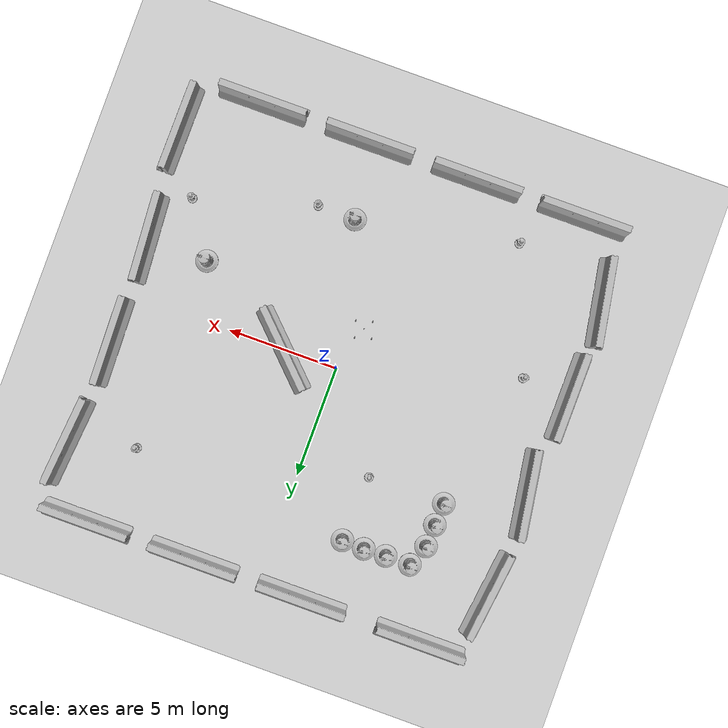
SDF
<sdf version="1.6">
 <world name="default">
  <light name="sun" type="directional">
   <pose>0 0 10 0 -0 0</pose>
   <diffuse>0.8 0.8 0.8 1</diffuse>
   <specular>0.2 0.2 0.2 1</specular>
   <attenuation>
    <range>1000</range>
    <constant>0.9</constant>
    <linear>0.01</linear>
    <quadratic>0.001</quadratic>
   </attenuation>
   <direction>-0.5 0.1 -0.9</direction>
  </light>
  <model name="ground_plane">
   <static>1</static>
   <link name="link">
    <collision name="collision">
     <geometry><plane><normal>0 0 1</normal><size>100 100</size></plane></geometry>
     <surface><friction><ode><mu>100</mu><mu2>50</mu2></ode></friction></surface>
    </collision>
    <visual name="visual">
     <cast_shadows>0</cast_shadows>
     <geometry><plane><normal>0 0 1</normal><size>100 100</size></plane></geometry>
     <material>
      <script><uri>file://media/materials/scripts/gazebo.material</uri><name>Gazebo/Grey</name></script>
     </material>
    </visual>
    <velocity_decay><linear>0</linear><angular>0</angular></velocity_decay>
   </link>
  </model>
  <physics name="default_physics" default="0" type="ode">
   <max_step_size>0.01</max_step_size>
   <real_time_factor>1</real_time_factor>
   <real_time_update_rate>100</real_time_update_rate>
  </physics>
  <scene><ambient>0.4 0.4 0.4 1</ambient><background>0.7 0.7 0.7 1</background><shadows>1</shadows></scene>
  <model name="jersey_barrier">
   <static>1</static>
   <link name="link">
    <visual name="visual">
     <geometry>
      <mesh><uri>model://jersey_barrier/meshes/jersey_barrier.dae</uri><scale>1 1 1</scale></mesh>
     </geometry>
    </visual>
    <collision name="upright">
     <pose>0 0 0.5715 0 -0 0</pose>
     <geometry><box><size>4.06542 0.3063 1.143</size></box></geometry>
    </collision>
    <collision name="base">
     <pose>0 0 0.032258 0 -0 0</pose>
     <geometry><box><size>4.06542 0.8107 0.064516</size></box></geometry>
    </collision>
    <collision name="base2">
     <pose>0 0 0.1 0 -0 0</pose>
     <geometry><box><size>4.06542 0.65 0.1</size></box></geometry>
    </collision>
    <collision name="base3">
     <pose>0 0 0.2 0 -0 0</pose>
     <geometry><box><size>4.06542 0.5 0.1</size></box></geometry>
    </collision>
    <collision name="left-angle">
     <pose>0 -0.224 0.2401 0.9 -0 0</pose>
     <geometry><box><size>4.06542 0.5 0.064516</size></box></geometry>
    </collision>
    <collision name="right-angle">
     <pose>0 0.224 0.2401 -0.9 0 0</pose>
     <geometry><box><size>4.06542 0.5 0.064516</size></box></geometry>
    </collision>
    <velocity_decay><linear>0</linear><angular>0</angular></velocity_decay>
   </link>
   <pose>-8 -10 0 0 -0 0</pose>
  </model>
  <model name="jersey_barrier_0">
   <static>1</static>
   <link name="link">
    <visual name="visual">
     <geometry>
      <mesh><uri>model://jersey_barrier/meshes/jersey_barrier.dae</uri><scale>1 1 1</scale></mesh>
     </geometry>
    </visual>
    <collision name="upright">
     <pose>0 0 0.5715 0 -0 0</pose>
     <geometry><box><size>4.06542 0.3063 1.143</size></box></geometry>
    </collision>
    <collision name="base">
     <pose>0 0 0.032258 0 -0 0</pose>
     <geometry><box><size>4.06542 0.8107 0.064516</size></box></geometry>
    </collision>
    <collision name="base2">
     <pose>0 0 0.1 0 -0 0</pose>
     <geometry><box><size>4.06542 0.65 0.1</size></box></geometry>
    </collision>
    <collision name="base3">
     <pose>0 0 0.2 0 -0 0</pose>
     <geometry><box><size>4.06542 0.5 0.1</size></box></geometry>
    </collision>
    <collision name="left-angle">
     <pose>0 -0.224 0.2401 0.9 -0 0</pose>
     <geometry><box><size>4.06542 0.5 0.064516</size></box></geometry>
    </collision>
    <collision name="right-angle">
     <pose>0 0.224 0.2401 -0.9 0 0</pose>
     <geometry><box><size>4.06542 0.5 0.064516</size></box></geometry>
    </collision>
    <velocity_decay><linear>0</linear><angular>0</angular></velocity_decay>
   </link>
   <pose>-3 -10 0 0 -0 0</pose>
  </model>
  <model name="jersey_barrier_1">
   <static>1</static>
   <link name="link">
    <visual name="visual">
     <geometry>
      <mesh><uri>model://jersey_barrier/meshes/jersey_barrier.dae</uri><scale>1 1 1</scale></mesh>
     </geometry>
    </visual>
    <collision name="upright">
     <pose>0 0 0.5715 0 -0 0</pose>
     <geometry><box><size>4.06542 0.3063 1.143</size></box></geometry>
    </collision>
    <collision name="base">
     <pose>0 0 0.032258 0 -0 0</pose>
     <geometry><box><size>4.06542 0.8107 0.064516</size></box></geometry>
    </collision>
    <collision name="base2">
     <pose>0 0 0.1 0 -0 0</pose>
     <geometry><box><size>4.06542 0.65 0.1</size></box></geometry>
    </collision>
    <collision name="base3">
     <pose>0 0 0.2 0 -0 0</pose>
     <geometry><box><size>4.06542 0.5 0.1</size></box></geometry>
    </collision>
    <collision name="left-angle">
     <pose>0 -0.224 0.2401 0.9 -0 0</pose>
     <geometry><box><size>4.06542 0.5 0.064516</size></box></geometry>
    </collision>
    <collision name="right-angle">
     <pose>0 0.224 0.2401 -0.9 0 0</pose>
     <geometry><box><size>4.06542 0.5 0.064516</size></box></geometry>
    </collision>
    <velocity_decay><linear>0</linear><angular>0</angular></velocity_decay>
   </link>
   <pose>2 -10 0 0 -0 0</pose>
  </model>
  <model name="jersey_barrier_2">
   <static>1</static>
   <link name="link">
    <visual name="visual">
     <geometry>
      <mesh><uri>model://jersey_barrier/meshes/jersey_barrier.dae</uri><scale>1 1 1</scale></mesh>
     </geometry>
    </visual>
    <collision name="upright">
     <pose>0 0 0.5715 0 -0 0</pose>
     <geometry><box><size>4.06542 0.3063 1.143</size></box></geometry>
    </collision>
    <collision name="base">
     <pose>0 0 0.032258 0 -0 0</pose>
     <geometry><box><size>4.06542 0.8107 0.064516</size></box></geometry>
    </collision>
    <collision name="base2">
     <pose>0 0 0.1 0 -0 0</pose>
     <geometry><box><size>4.06542 0.65 0.1</size></box></geometry>
    </collision>
    <collision name="base3">
     <pose>0 0 0.2 0 -0 0</pose>
     <geometry><box><size>4.06542 0.5 0.1</size></box></geometry>
    </collision>
    <collision name="left-angle">
     <pose>0 -0.224 0.2401 0.9 -0 0</pose>
     <geometry><box><size>4.06542 0.5 0.064516</size></box></geometry>
    </collision>
    <collision name="right-angle">
     <pose>0 0.224 0.2401 -0.9 0 0</pose>
     <geometry><box><size>4.06542 0.5 0.064516</size></box></geometry>
    </collision>
    <velocity_decay><linear>0</linear><angular>0</angular></velocity_decay>
   </link>
   <pose>7 -10 0 0 -0 0</pose>
  </model>
  <model name="jersey_barrier_3">
   <static>1</static>
   <link name="link">
    <visual name="visual">
     <geometry>
      <mesh><uri>model://jersey_barrier/meshes/jersey_barrier.dae</uri><scale>1 1 1</scale></mesh>
     </geometry>
    </visual>
    <collision name="upright">
     <pose>0 0 0.5715 0 -0 0</pose>
     <geometry><box><size>4.06542 0.3063 1.143</size></box></geometry>
    </collision>
    <collision name="base">
     <pose>0 0 0.032258 0 -0 0</pose>
     <geometry><box><size>4.06542 0.8107 0.064516</size></box></geometry>
    </collision>
    <collision name="base2">
     <pose>0 0 0.1 0 -0 0</pose>
     <geometry><box><size>4.06542 0.65 0.1</size></box></geometry>
    </collision>
    <collision name="base3">
     <pose>0 0 0.2 0 -0 0</pose>
     <geometry><box><size>4.06542 0.5 0.1</size></box></geometry>
    </collision>
    <collision name="left-angle">
     <pose>0 -0.224 0.2401 0.9 -0 0</pose>
     <geometry><box><size>4.06542 0.5 0.064516</size></box></geometry>
    </collision>
    <collision name="right-angle">
     <pose>0 0.224 0.2401 -0.9 0 0</pose>
     <geometry><box><size>4.06542 0.5 0.064516</size></box></geometry>
    </collision>
    <velocity_decay><linear>0</linear><angular>0</angular></velocity_decay>
   </link>
   <pose>-7.50675 10 0 0 -0 0</pose>
  </model>
  <model name="jersey_barrier_4">
   <static>1</static>
   <link name="link">
    <visual name="visual">
     <geometry>
      <mesh><uri>model://jersey_barrier/meshes/jersey_barrier.dae</uri><scale>1 1 1</scale></mesh>
     </geometry>
    </visual>
    <collision name="upright">
     <pose>0 0 0.5715 0 -0 0</pose>
     <geometry><box><size>4.06542 0.3063 1.143</size></box></geometry>
    </collision>
    <collision name="base">
     <pose>0 0 0.032258 0 -0 0</pose>
     <geometry><box><size>4.06542 0.8107 0.064516</size></box></geometry>
    </collision>
    <collision name="base2">
     <pose>0 0 0.1 0 -0 0</pose>
     <geometry><box><size>4.06542 0.65 0.1</size></box></geometry>
    </collision>
    <collision name="base3">
     <pose>0 0 0.2 0 -0 0</pose>
     <geometry><box><size>4.06542 0.5 0.1</size></box></geometry>
    </collision>
    <collision name="left-angle">
     <pose>0 -0.224 0.2401 0.9 -0 0</pose>
     <geometry><box><size>4.06542 0.5 0.064516</size></box></geometry>
    </collision>
    <collision name="right-angle">
     <pose>0 0.224 0.2401 -0.9 0 0</pose>
     <geometry><box><size>4.06542 0.5 0.064516</size></box></geometry>
    </collision>
    <velocity_decay><linear>0</linear><angular>0</angular></velocity_decay>
   </link>
   <pose>-2 10 0 0 -0 0</pose>
  </model>
  <model name="jersey_barrier_5">
   <static>1</static>
   <link name="link">
    <visual name="visual">
     <geometry>
      <mesh><uri>model://jersey_barrier/meshes/jersey_barrier.dae</uri><scale>1 1 1</scale></mesh>
     </geometry>
    </visual>
    <collision name="upright">
     <pose>0 0 0.5715 0 -0 0</pose>
     <geometry><box><size>4.06542 0.3063 1.143</size></box></geometry>
    </collision>
    <collision name="base">
     <pose>0 0 0.032258 0 -0 0</pose>
     <geometry><box><size>4.06542 0.8107 0.064516</size></box></geometry>
    </collision>
    <collision name="base2">
     <pose>0 0 0.1 0 -0 0</pose>
     <geometry><box><size>4.06542 0.65 0.1</size></box></geometry>
    </collision>
    <collision name="base3">
     <pose>0 0 0.2 0 -0 0</pose>
     <geometry><box><size>4.06542 0.5 0.1</size></box></geometry>
    </collision>
    <collision name="left-angle">
     <pose>0 -0.224 0.2401 0.9 -0 0</pose>
     <geometry><box><size>4.06542 0.5 0.064516</size></box></geometry>
    </collision>
    <collision name="right-angle">
     <pose>0 0.224 0.2401 -0.9 0 0</pose>
     <geometry><box><size>4.06542 0.5 0.064516</size></box></geometry>
    </collision>
    <velocity_decay><linear>0</linear><angular>0</angular></velocity_decay>
   </link>
   <pose>3 10 0 0 -0 0</pose>
  </model>
  <model name="jersey_barrier_6">
   <static>1</static>
   <link name="link">
    <visual name="visual">
     <geometry>
      <mesh><uri>model://jersey_barrier/meshes/jersey_barrier.dae</uri><scale>1 1 1</scale></mesh>
     </geometry>
    </visual>
    <collision name="upright">
     <pose>0 0 0.5715 0 -0 0</pose>
     <geometry><box><size>4.06542 0.3063 1.143</size></box></geometry>
    </collision>
    <collision name="base">
     <pose>0 0 0.032258 0 -0 0</pose>
     <geometry><box><size>4.06542 0.8107 0.064516</size></box></geometry>
    </collision>
    <collision name="base2">
     <pose>0 0 0.1 0 -0 0</pose>
     <geometry><box><size>4.06542 0.65 0.1</size></box></geometry>
    </collision>
    <collision name="base3">
     <pose>0 0 0.2 0 -0 0</pose>
     <geometry><box><size>4.06542 0.5 0.1</size></box></geometry>
    </collision>
    <collision name="left-angle">
     <pose>0 -0.224 0.2401 0.9 -0 0</pose>
     <geometry><box><size>4.06542 0.5 0.064516</size></box></geometry>
    </collision>
    <collision name="right-angle">
     <pose>0 0.224 0.2401 -0.9 0 0</pose>
     <geometry><box><size>4.06542 0.5 0.064516</size></box></geometry>
    </collision>
    <velocity_decay><linear>0</linear><angular>0</angular></velocity_decay>
   </link>
   <pose>8 10 0 0 -0 0</pose>
  </model>
  <model name="jersey_barrier_7">
   <static>1</static>
   <link name="link">
    <visual name="visual">
     <geometry>
      <mesh><uri>model://jersey_barrier/meshes/jersey_barrier.dae</uri><scale>1 1 1</scale></mesh>
     </geometry>
    </visual>
    <collision name="upright">
     <pose>0 0 0.5715 0 -0 0</pose>
     <geometry><box><size>4.06542 0.3063 1.143</size></box></geometry>
    </collision>
    <collision name="base">
     <pose>0 0 0.032258 0 -0 0</pose>
     <geometry><box><size>4.06542 0.8107 0.064516</size></box></geometry>
    </collision>
    <collision name="base2">
     <pose>0 0 0.1 0 -0 0</pose>
     <geometry><box><size>4.06542 0.65 0.1</size></box></geometry>
    </collision>
    <collision name="base3">
     <pose>0 0 0.2 0 -0 0</pose>
     <geometry><box><size>4.06542 0.5 0.1</size></box></geometry>
    </collision>
    <collision name="left-angle">
     <pose>0 -0.224 0.2401 0.9 -0 0</pose>
     <geometry><box><size>4.06542 0.5 0.064516</size></box></geometry>
    </collision>
    <collision name="right-angle">
     <pose>0 0.224 0.2401 -0.9 0 0</pose>
     <geometry><box><size>4.06542 0.5 0.064516</size></box></geometry>
    </collision>
    <velocity_decay><linear>0</linear><angular>0</angular></velocity_decay>
   </link>
   <pose>9.74902 -2.57759 0 0 -0 1.64</pose>
  </model>
  <model name="jersey_barrier_8">
   <static>1</static>
   <link name="link">
    <visual name="visual">
     <geometry>
      <mesh><uri>model://jersey_barrier/meshes/jersey_barrier.dae</uri><scale>1 1 1</scale></mesh>
     </geometry>
    </visual>
    <collision name="upright">
     <pose>0 0 0.5715 0 -0 0</pose>
     <geometry><box><size>4.06542 0.3063 1.143</size></box></geometry>
    </collision>
    <collision name="base">
     <pose>0 0 0.032258 0 -0 0</pose>
     <geometry><box><size>4.06542 0.8107 0.064516</size></box></geometry>
    </collision>
    <collision name="base2">
     <pose>0 0 0.1 0 -0 0</pose>
     <geometry><box><size>4.06542 0.65 0.1</size></box></geometry>
    </collision>
    <collision name="base3">
     <pose>0 0 0.2 0 -0 0</pose>
     <geometry><box><size>4.06542 0.5 0.1</size></box></geometry>
    </collision>
    <collision name="left-angle">
     <pose>0 -0.224 0.2401 0.9 -0 0</pose>
     <geometry><box><size>4.06542 0.5 0.064516</size></box></geometry>
    </collision>
    <collision name="right-angle">
     <pose>0 0.224 0.2401 -0.9 0 0</pose>
     <geometry><box><size>4.06542 0.5 0.064516</size></box></geometry>
    </collision>
    <velocity_decay><linear>0</linear><angular>0</angular></velocity_decay>
   </link>
   <pose>9.70141 2.24369 0 0 -0 1.6</pose>
  </model>
  <model name="jersey_barrier_9">
   <static>1</static>
   <link name="link">
    <visual name="visual">
     <geometry>
      <mesh><uri>model://jersey_barrier/meshes/jersey_barrier.dae</uri><scale>1 1 1</scale></mesh>
     </geometry>
    </visual>
    <collision name="upright">
     <pose>0 0 0.5715 0 -0 0</pose>
     <geometry><box><size>4.06542 0.3063 1.143</size></box></geometry>
    </collision>
    <collision name="base">
     <pose>0 0 0.032258 0 -0 0</pose>
     <geometry><box><size>4.06542 0.8107 0.064516</size></box></geometry>
    </collision>
    <collision name="base2">
     <pose>0 0 0.1 0 -0 0</pose>
     <geometry><box><size>4.06542 0.65 0.1</size></box></geometry>
    </collision>
    <collision name="base3">
     <pose>0 0 0.2 0 -0 0</pose>
     <geometry><box><size>4.06542 0.5 0.1</size></box></geometry>
    </collision>
    <collision name="left-angle">
     <pose>0 -0.224 0.2401 0.9 -0 0</pose>
     <geometry><box><size>4.06542 0.5 0.064516</size></box></geometry>
    </collision>
    <collision name="right-angle">
     <pose>0 0.224 0.2401 -0.9 0 0</pose>
     <geometry><box><size>4.06542 0.5 0.064516</size></box></geometry>
    </collision>
    <velocity_decay><linear>0</linear><angular>0</angular></velocity_decay>
   </link>
   <pose>-10.0607 -6.69856 0 0 0 -1.4</pose>
  </model>
  <model name="jersey_barrier_10">
   <static>1</static>
   <link name="link">
    <visual name="visual">
     <geometry>
      <mesh><uri>model://jersey_barrier/meshes/jersey_barrier.dae</uri><scale>1 1 1</scale></mesh>
     </geometry>
    </visual>
    <collision name="upright">
     <pose>0 0 0.5715 0 -0 0</pose>
     <geometry><box><size>4.06542 0.3063 1.143</size></box></geometry>
    </collision>
    <collision name="base">
     <pose>0 0 0.032258 0 -0 0</pose>
     <geometry><box><size>4.06542 0.8107 0.064516</size></box></geometry>
    </collision>
    <collision name="base2">
     <pose>0 0 0.1 0 -0 0</pose>
     <geometry><box><size>4.06542 0.65 0.1</size></box></geometry>
    </collision>
    <collision name="base3">
     <pose>0 0 0.2 0 -0 0</pose>
     <geometry><box><size>4.06542 0.5 0.1</size></box></geometry>
    </collision>
    <collision name="left-angle">
     <pose>0 -0.224 0.2401 0.9 -0 0</pose>
     <geometry><box><size>4.06542 0.5 0.064516</size></box></geometry>
    </collision>
    <collision name="right-angle">
     <pose>0 0.224 0.2401 -0.9 0 0</pose>
     <geometry><box><size>4.06542 0.5 0.064516</size></box></geometry>
    </collision>
    <velocity_decay><linear>0</linear><angular>0</angular></velocity_decay>
   </link>
   <pose>-10.0774 -2.27159 0 0 -0 1.56</pose>
  </model>
  <model name="jersey_barrier_11">
   <static>1</static>
   <link name="link">
    <visual name="visual">
     <geometry>
      <mesh><uri>model://jersey_barrier/meshes/jersey_barrier.dae</uri><scale>1 1 1</scale></mesh>
     </geometry>
    </visual>
    <collision name="upright">
     <pose>0 0 0.5715 0 -0 0</pose>
     <geometry><box><size>4.06542 0.3063 1.143</size></box></geometry>
    </collision>
    <collision name="base">
     <pose>0 0 0.032258 0 -0 0</pose>
     <geometry><box><size>4.06542 0.8107 0.064516</size></box></geometry>
    </collision>
    <collision name="base2">
     <pose>0 0 0.1 0 -0 0</pose>
     <geometry><box><size>4.06542 0.65 0.1</size></box></geometry>
    </collision>
    <collision name="base3">
     <pose>0 0 0.2 0 -0 0</pose>
     <geometry><box><size>4.06542 0.5 0.1</size></box></geometry>
    </collision>
    <collision name="left-angle">
     <pose>0 -0.224 0.2401 0.9 -0 0</pose>
     <geometry><box><size>4.06542 0.5 0.064516</size></box></geometry>
    </collision>
    <collision name="right-angle">
     <pose>0 0.224 0.2401 -0.9 0 0</pose>
     <geometry><box><size>4.06542 0.5 0.064516</size></box></geometry>
    </collision>
    <velocity_decay><linear>0</linear><angular>0</angular></velocity_decay>
   </link>
   <pose>-9.77013 2.34791 0 0 -0 1.72</pose>
  </model>
  <model name="jersey_barrier_12">
   <static>1</static>
   <link name="link">
    <visual name="visual">
     <geometry>
      <mesh><uri>model://jersey_barrier/meshes/jersey_barrier.dae</uri><scale>1 1 1</scale></mesh>
     </geometry>
    </visual>
    <collision name="upright">
     <pose>0 0 0.5715 0 -0 0</pose>
     <geometry><box><size>4.06542 0.3063 1.143</size></box></geometry>
    </collision>
    <collision name="base">
     <pose>0 0 0.032258 0 -0 0</pose>
     <geometry><box><size>4.06542 0.8107 0.064516</size></box></geometry>
    </collision>
    <collision name="base2">
     <pose>0 0 0.1 0 -0 0</pose>
     <geometry><box><size>4.06542 0.65 0.1</size></box></geometry>
    </collision>
    <collision name="base3">
     <pose>0 0 0.2 0 -0 0</pose>
     <geometry><box><size>4.06542 0.5 0.1</size></box></geometry>
    </collision>
    <collision name="left-angle">
     <pose>0 -0.224 0.2401 0.9 -0 0</pose>
     <geometry><box><size>4.06542 0.5 0.064516</size></box></geometry>
    </collision>
    <collision name="right-angle">
     <pose>0 0.224 0.2401 -0.9 0 0</pose>
     <geometry><box><size>4.06542 0.5 0.064516</size></box></geometry>
    </collision>
    <velocity_decay><linear>0</linear><angular>0</angular></velocity_decay>
   </link>
   <pose>10.0879 -7.62159 0 0 -0 1.56</pose>
  </model>
  <model name="jersey_barrier_13">
   <static>1</static>
   <link name="link">
    <visual name="visual">
     <geometry>
      <mesh><uri>model://jersey_barrier/meshes/jersey_barrier.dae</uri><scale>1 1 1</scale></mesh>
     </geometry>
    </visual>
    <collision name="upright">
     <pose>0 0 0.5715 0 -0 0</pose>
     <geometry><box><size>4.06542 0.3063 1.143</size></box></geometry>
    </collision>
    <collision name="base">
     <pose>0 0 0.032258 0 -0 0</pose>
     <geometry><box><size>4.06542 0.8107 0.064516</size></box></geometry>
    </collision>
    <collision name="base2">
     <pose>0 0 0.1 0 -0 0</pose>
     <geometry><box><size>4.06542 0.65 0.1</size></box></geometry>
    </collision>
    <collision name="base3">
     <pose>0 0 0.2 0 -0 0</pose>
     <geometry><box><size>4.06542 0.5 0.1</size></box></geometry>
    </collision>
    <collision name="left-angle">
     <pose>0 -0.224 0.2401 0.9 -0 0</pose>
     <geometry><box><size>4.06542 0.5 0.064516</size></box></geometry>
    </collision>
    <collision name="right-angle">
     <pose>0 0.224 0.2401 -0.9 0 0</pose>
     <geometry><box><size>4.06542 0.5 0.064516</size></box></geometry>
    </collision>
    <velocity_decay><linear>0</linear><angular>0</angular></velocity_decay>
   </link>
   <pose>10 7 0 0 -0 1.48</pose>
  </model>
  <model name="jersey_barrier_14">
   <static>1</static>
   <link name="link">
    <visual name="visual">
     <geometry>
      <mesh><uri>model://jersey_barrier/meshes/jersey_barrier.dae</uri><scale>1 1 1</scale></mesh>
     </geometry>
    </visual>
    <collision name="upright">
     <pose>0 0 0.5715 0 -0 0</pose>
     <geometry><box><size>4.06542 0.3063 1.143</size></box></geometry>
    </collision>
    <collision name="base">
     <pose>0 0 0.032258 0 -0 0</pose>
     <geometry><box><size>4.06542 0.8107 0.064516</size></box></geometry>
    </collision>
    <collision name="base2">
     <pose>0 0 0.1 0 -0 0</pose>
     <geometry><box><size>4.06542 0.65 0.1</size></box></geometry>
    </collision>
    <collision name="base3">
     <pose>0 0 0.2 0 -0 0</pose>
     <geometry><box><size>4.06542 0.5 0.1</size></box></geometry>
    </collision>
    <collision name="left-angle">
     <pose>0 -0.224 0.2401 0.9 -0 0</pose>
     <geometry><box><size>4.06542 0.5 0.064516</size></box></geometry>
    </collision>
    <collision name="right-angle">
     <pose>0 0.224 0.2401 -0.9 0 0</pose>
     <geometry><box><size>4.06542 0.5 0.064516</size></box></geometry>
    </collision>
    <velocity_decay><linear>0</linear><angular>0</angular></velocity_decay>
   </link>
   <pose>-9.64482 7.05946 0 0 -0 1.44</pose>
  </model>
  <model name="fire_hydrant">
   <static>1</static>
   <link name="link">
    <collision name="collision">
     <geometry><mesh><uri>model://fire_hydrant/meshes/fire_hydrant.dae</uri><scale>1 1 1</scale></mesh></geometry>
    </collision>
    <visual name="visual">
     <geometry><mesh><uri>model://fire_hydrant/meshes/fire_hydrant.dae</uri><scale>1 1 1</scale></mesh></geometry>
    </visual>
    <velocity_decay><linear>0</linear><angular>0</angular></velocity_decay>
   </link>
   <pose>3.18024 -6.51118 0 0 -0 0</pose>
  </model>
  <model name="fire_hydrant_0">
   <static>1</static>
   <link name="link">
    <collision name="collision">
     <geometry><mesh><uri>model://fire_hydrant/meshes/fire_hydrant.dae</uri><scale>1 1 1</scale></mesh></geometry>
    </collision>
    <visual name="visual">
     <geometry><mesh><uri>model://fire_hydrant/meshes/fire_hydrant.dae</uri><scale>1 1 1</scale></mesh></geometry>
    </visual>
    <velocity_decay><linear>0</linear><angular>0</angular></velocity_decay>
   </link>
   <pose>-3 4 0 0 -0 0</pose>
  </model>
  <model name="fire_hydrant_1">
   <static>1</static>
   <link name="link">
    <collision name="collision">
     <geometry><mesh><uri>model://fire_hydrant/meshes/fire_hydrant.dae</uri><scale>1 1 1</scale></mesh></geometry>
    </collision>
    <visual name="visual">
     <geometry><mesh><uri>model://fire_hydrant/meshes/fire_hydrant.dae</uri><scale>1 1 1</scale></mesh></geometry>
    </visual>
    <velocity_decay><linear>0</linear><angular>0</angular></velocity_decay>
   </link>
   <pose>-7.90686 -2.41363 0 0 -0 0</pose>
  </model>
  <model name="jersey_barrier_15">
   <static>1</static>
   <link name="link">
    <visual name="visual">
     <geometry>
      <mesh><uri>model://jersey_barrier/meshes/jersey_barrier.dae</uri><scale>1 1 1</scale></mesh>
     </geometry>
    </visual>
    <collision name="upright">
     <pose>0 0 0.5715 0 -0 0</pose>
     <geometry><box><size>4.06542 0.3063 1.143</size></box></geometry>
    </collision>
    <collision name="base">
     <pose>0 0 0.032258 0 -0 0</pose>
     <geometry><box><size>4.06542 0.8107 0.064516</size></box></geometry>
    </collision>
    <collision name="base2">
     <pose>0 0 0.1 0 -0 0</pose>
     <geometry><box><size>4.06542 0.65 0.1</size></box></geometry>
    </collision>
    <collision name="base3">
     <pose>0 0 0.2 0 -0 0</pose>
     <geometry><box><size>4.06542 0.5 0.1</size></box></geometry>
    </collision>
    <collision name="left-angle">
     <pose>0 -0.224 0.2401 0.9 -0 0</pose>
     <geometry><box><size>4.06542 0.5 0.064516</size></box></geometry>
    </collision>
    <collision name="right-angle">
     <pose>0 0.224 0.2401 -0.9 0 0</pose>
     <geometry><box><size>4.06542 0.5 0.064516</size></box></geometry>
    </collision>
    <velocity_decay><linear>0</linear><angular>0</angular></velocity_decay>
   </link>
   <pose>2.45495 0 0 0 -0 2.36</pose>
  </model>
  <model name="Construction Barrel">
   <link name="link">
    <inertial>
     <pose>0 0 0.4 0 -0 0</pose>
     <mass>500</mass>
     <inertia><ixx>51.2096</ixx><iyy>51.2096</iyy><izz>25</izz><ixy>0</ixy><ixz>0</ixz><iyz>0</iyz></inertia>
    </inertial>
    <collision name="collision">
     <geometry>
      <mesh><uri>model://construction_barrel/meshes/construction_barrel.dae</uri><scale>1 1 1</scale></mesh>
     </geometry>
    </collision>
    <visual name="visual">
     <geometry>
      <mesh><uri>model://construction_barrel/meshes/construction_barrel.dae</uri><scale>1 1 1</scale></mesh>
     </geometry>
    </visual>
    <velocity_decay><linear>0</linear><angular>0</angular></velocity_decay>
   </link>
   <pose>7.00025 -2.54673 -9e-05 0.000308 -0.000178 -0.000871</pose>
   <static>0</static>
  </model>
  <model name="Construction Barrel_0">
   <link name="link">
    <inertial>
     <pose>0 0 0.4 0 -0 0</pose>
     <mass>500</mass>
     <inertia><ixx>51.2096</ixx><iyy>51.2096</iyy><izz>25</izz><ixy>0</ixy><ixz>0</ixz><iyz>0</iyz></inertia>
    </inertial>
    <collision name="collision">
     <geometry>
      <mesh><uri>model://construction_barrel/meshes/construction_barrel.dae</uri><scale>1 1 1</scale></mesh>
     </geometry>
    </collision>
    <visual name="visual">
     <geometry>
      <mesh><uri>model://construction_barrel/meshes/construction_barrel.dae</uri><scale>1 1 1</scale></mesh>
     </geometry>
    </visual>
    <velocity_decay><linear>0</linear><angular>0</angular></velocity_decay>
   </link>
   <pose>1.45164 -6.51153 -9e-05 0.000308 -0.000178 -0.000656</pose>
   <static>0</static>
  </model>
  <model name="Construction Barrel_1">
   <link name="link">
    <inertial>
     <pose>0 0 0.4 0 -0 0</pose>
     <mass>500</mass>
     <inertia><ixx>51.2096</ixx><iyy>51.2096</iyy><izz>25</izz><ixy>0</ixy><ixz>0</ixz><iyz>0</iyz></inertia>
    </inertial>
    <collision name="collision">
     <geometry>
      <mesh><uri>model://construction_barrel/meshes/construction_barrel.dae</uri><scale>1 1 1</scale></mesh>
     </geometry>
    </collision>
    <visual name="visual">
     <geometry>
      <mesh><uri>model://construction_barrel/meshes/construction_barrel.dae</uri><scale>1 1 1</scale></mesh>
     </geometry>
    </visual>
    <velocity_decay><linear>0</linear><angular>0</angular></velocity_decay>
   </link>
   <pose>-6.50481 3.98225 -9.1e-05 0.000308 -0.000178 -0.010674</pose>
   <static>0</static>
  </model>
  <model name="Construction Barrel_2">
   <link name="link">
    <inertial>
     <pose>0 0 0.4 0 -0 0</pose>
     <mass>500</mass>
     <inertia><ixx>51.2096</ixx><iyy>51.2096</iyy><izz>25</izz><ixy>0</ixy><ixz>0</ixz><iyz>0</iyz></inertia>
    </inertial>
    <collision name="collision">
     <geometry>
      <mesh><uri>model://construction_barrel/meshes/construction_barrel.dae</uri><scale>1 1 1</scale></mesh>
     </geometry>
    </collision>
    <visual name="visual">
     <geometry>
      <mesh><uri>model://construction_barrel/meshes/construction_barrel.dae</uri><scale>1 1 1</scale></mesh>
     </geometry>
    </visual>
    <velocity_decay><linear>0</linear><angular>0</angular></velocity_decay>
   </link>
   <pose>-6.45076 4.99629 -9e-05 0.000306 -0.000177 0.064584</pose>
   <static>0</static>
  </model>
  <model name="Construction Barrel_3">
   <link name="link">
    <inertial>
     <pose>0 0 0.4 0 -0 0</pose>
     <mass>500</mass>
     <inertia><ixx>51.2096</ixx><iyy>51.2096</iyy><izz>25</izz><ixy>0</ixy><ixz>0</ixz><iyz>0</iyz></inertia>
    </inertial>
    <collision name="collision">
     <geometry>
      <mesh><uri>model://construction_barrel/meshes/construction_barrel.dae</uri><scale>1 1 1</scale></mesh>
     </geometry>
    </collision>
    <visual name="visual">
     <geometry>
      <mesh><uri>model://construction_barrel/meshes/construction_barrel.dae</uri><scale>1 1 1</scale></mesh>
     </geometry>
    </visual>
    <velocity_decay><linear>0</linear><angular>0</angular></velocity_decay>
   </link>
   <pose>-6.40198 6.01049 -9.1e-05 0.00031 -0.000179 -0.12202</pose>
   <static>0</static>
  </model>
  <model name="Construction Barrel_4">
   <link name="link">
    <inertial>
     <pose>0 0 0.4 0 -0 0</pose>
     <mass>500</mass>
     <inertia><ixx>51.2096</ixx><iyy>51.2096</iyy><izz>25</izz><ixy>0</ixy><ixz>0</ixz><iyz>0</iyz></inertia>
    </inertial>
    <collision name="collision">
     <geometry>
      <mesh><uri>model://construction_barrel/meshes/construction_barrel.dae</uri><scale>1 1 1</scale></mesh>
     </geometry>
    </collision>
    <visual name="visual">
     <geometry>
      <mesh><uri>model://construction_barrel/meshes/construction_barrel.dae</uri><scale>1 1 1</scale></mesh>
     </geometry>
    </visual>
    <velocity_decay><linear>0</linear><angular>0</angular></velocity_decay>
   </link>
   <pose>-6.0065 7.00848 -1.6e-05 2.5e-05 -2.9e-05 -0.050371</pose>
   <static>0</static>
  </model>
  <model name="Construction Barrel_5">
   <link name="link">
    <inertial>
     <pose>0 0 0.4 0 -0 0</pose>
     <mass>500</mass>
     <inertia><ixx>51.2096</ixx><iyy>51.2096</iyy><izz>25</izz><ixy>0</ixy><ixz>0</ixz><iyz>0</iyz></inertia>
    </inertial>
    <collision name="collision">
     <geometry>
      <mesh><uri>model://construction_barrel/meshes/construction_barrel.dae</uri><scale>1 1 1</scale></mesh>
     </geometry>
    </collision>
    <visual name="visual">
     <geometry>
      <mesh><uri>model://construction_barrel/meshes/construction_barrel.dae</uri><scale>1 1 1</scale></mesh>
     </geometry>
    </visual>
    <velocity_decay><linear>0</linear><angular>0</angular></velocity_decay>
   </link>
   <pose>-4.8759 7.00816 -9e-05 0.000304 -0.000176 0.145987</pose>
   <static>0</static>
  </model>
  <model name="Construction Barrel_6">
   <link name="link">
    <inertial>
     <pose>0 0 0.4 0 -0 0</pose>
     <mass>500</mass>
     <inertia><ixx>51.2096</ixx><iyy>51.2096</iyy><izz>25</izz><ixy>0</ixy><ixz>0</ixz><iyz>0</iyz></inertia>
    </inertial>
    <collision name="collision">
     <geometry>
      <mesh><uri>model://construction_barrel/meshes/construction_barrel.dae</uri><scale>1 1 1</scale></mesh>
     </geometry>
    </collision>
    <visual name="visual">
     <geometry>
      <mesh><uri>model://construction_barrel/meshes/construction_barrel.dae</uri><scale>1 1 1</scale></mesh>
     </geometry>
    </visual>
    <velocity_decay><linear>0</linear><angular>0</angular></velocity_decay>
   </link>
   <pose>-3.86149 7.04547 -9e-05 0.000306 -0.000177 0.066184</pose>
   <static>0</static>
  </model>
  <model name="Construction Barrel_7">
   <link name="link">
    <inertial>
     <pose>0 0 0.4 0 -0 0</pose>
     <mass>500</mass>
     <inertia><ixx>51.2096</ixx><iyy>51.2096</iyy><izz>25</izz><ixy>0</ixy><ixz>0</ixz><iyz>0</iyz></inertia>
    </inertial>
    <collision name="collision">
     <geometry>
      <mesh><uri>model://construction_barrel/meshes/construction_barrel.dae</uri><scale>1 1 1</scale></mesh>
     </geometry>
    </collision>
    <visual name="visual">
     <geometry>
      <mesh><uri>model://construction_barrel/meshes/construction_barrel.dae</uri><scale>1 1 1</scale></mesh>
     </geometry>
    </visual>
    <velocity_decay><linear>0</linear><angular>0</angular></velocity_decay>
   </link>
   <pose>-2.84586 7.01438 -9.1e-05 0.000309 -0.000178 -0.04222</pose>
   <static>0</static>
  </model>
  <gravity>0 0 -9.8</gravity>
  <magnetic_field>6e-06 2.3e-05 -4.2e-05</magnetic_field>
  <atmosphere type="adiabatic"/>
  <spherical_coordinates>
   <surface_model>EARTH_WGS84</surface_model>
   <latitude_deg>0</latitude_deg>
   <longitude_deg>0</longitude_deg>
   <elevation>0</elevation>
   <heading_deg>0</heading_deg>
  </spherical_coordinates>
  <model name="fire_hydrant_1_clone">
   <static>1</static>
   <link name="link">
    <collision name="collision">
     <geometry><mesh><uri>model://fire_hydrant/meshes/fire_hydrant.dae</uri><scale>1 1 1</scale></mesh></geometry>
    </collision>
    <visual name="visual">
     <geometry><mesh><uri>model://fire_hydrant/meshes/fire_hydrant.dae</uri><scale>1 1 1</scale></mesh></geometry>
    </visual>
    <velocity_decay><linear>0</linear><angular>0</angular></velocity_decay>
   </link>
   <pose>-5.74674 -7.95866 0 0 -0 0</pose>
  </model>
  <model name="fire_hydrant_clone">
   <static>1</static>
   <link name="link">
    <collision name="collision">
     <geometry><mesh><uri>model://fire_hydrant/meshes/fire_hydrant.dae</uri><scale>1 1 1</scale></mesh></geometry>
    </collision>
    <visual name="visual">
     <geometry><mesh><uri>model://fire_hydrant/meshes/fire_hydrant.dae</uri><scale>1 1 1</scale></mesh></geometry>
    </visual>
    <velocity_decay><linear>0</linear><angular>0</angular></velocity_decay>
   </link>
   <pose>8.52647 -4.92439 0 0 -0 0</pose>
  </model>
  <model name="fire_hydrant_clone_clone">
   <static>1</static>
   <link name="link">
    <collision name="collision">
     <geometry><mesh><uri>model://fire_hydrant/meshes/fire_hydrant.dae</uri><scale>1 1 1</scale></mesh></geometry>
    </collision>
    <visual name="visual">
     <geometry><mesh><uri>model://fire_hydrant/meshes/fire_hydrant.dae</uri><scale>1 1 1</scale></mesh></geometry>
    </visual>
    <velocity_decay><linear>0</linear><angular>0</angular></velocity_decay>
   </link>
   <pose>7.03867 6.26427 0 0 -0 0</pose>
  </model>
  <model name="Untitled">
   <link name="link_2">
    <pose>-0.3775 -0.38 -0.019 0 -0 0</pose>
    <inertial>
     <mass>1</mass>
     <inertia>
      <ixx>0.166667</ixx>
      <ixy>0</ixy>
      <ixz>0</ixz>
      <iyy>0.166667</iyy>
      <iyz>0</iyz>
      <izz>0.166667</izz>
     </inertia>
    </inertial>
    <visual name="visual">
     <geometry><box><size>0.03 0.06 0.57</size></box></geometry>
     <material>
      <lighting>1</lighting>
      <script><uri>file://media/materials/scripts/gazebo.material</uri><name>Gazebo/Grey</name></script>
      <ambient>0.3 0.3 0.3 1</ambient>
      <diffuse>0.7 0.7 0.7 1</diffuse>
      <specular>0.01 0.01 0.01 1</specular>
      <emissive>0 0 0 1</emissive>
      <shader type="vertex"><normal_map>__default__</normal_map></shader>
     </material>
    </visual>
    <collision name="collision">
     <geometry><box><size>0.03 0.06 0.57</size></box></geometry>
     <surface>
      <friction>
       <ode><mu>1</mu><mu2>1</mu2><fdir1>0 0 0</fdir1><slip1>0</slip1><slip2>0</slip2></ode>
       <torsional>
        <coefficient>1</coefficient>
        <patch_radius>0</patch_radius>
        <surface_radius>0</surface_radius>
        <use_patch_radius>1</use_patch_radius>
        <ode><slip>0</slip></ode>
       </torsional>
      </friction>
      <bounce><restitution_coefficient>0</restitution_coefficient><threshold>1e+06</threshold></bounce>
      <contact>
       <collide_without_contact>0</collide_without_contact>
       <collide_without_contact_bitmask>1</collide_without_contact_bitmask>
       <collide_bitmask>1</collide_bitmask>
       <ode>
        <soft_cfm>0</soft_cfm>
        <soft_erp>0.2</soft_erp>
        <kp>1e+13</kp>
        <kd>1</kd>
        <max_vel>0.01</max_vel>
        <min_depth>0</min_depth>
       </ode>
       <bullet>
        <split_impulse>1</split_impulse>
        <split_impulse_penetration_threshold>-0.01</split_impulse_penetration_threshold>
        <soft_cfm>0</soft_cfm>
        <soft_erp>0.2</soft_erp>
        <kp>1e+13</kp>
        <kd>1</kd>
       </bullet>
      </contact>
     </surface>
    </collision>
   </link>
   <link name="link_2_clone">
    <pose>0.3775 -0.38 -0.019 0 -0 0</pose>
    <inertial>
     <mass>1</mass>
     <inertia>
      <ixx>0.166667</ixx>
      <ixy>0</ixy>
      <ixz>0</ixz>
      <iyy>0.166667</iyy>
      <iyz>0</iyz>
      <izz>0.166667</izz>
     </inertia>
    </inertial>
    <visual name="visual">
     <geometry><box><size>0.03 0.06 0.57</size></box></geometry>
     <material>
      <lighting>1</lighting>
      <script><uri>file://media/materials/scripts/gazebo.material</uri><name>Gazebo/Grey</name></script>
      <ambient>0.3 0.3 0.3 1</ambient>
      <diffuse>0.7 0.7 0.7 1</diffuse>
      <specular>0.01 0.01 0.01 1</specular>
      <emissive>0 0 0 1</emissive>
      <shader type="vertex"><normal_map>__default__</normal_map></shader>
     </material>
    </visual>
    <collision name="collision">
     <geometry><box><size>0.03 0.06 0.57</size></box></geometry>
     <surface>
      <friction>
       <ode><mu>1</mu><mu2>1</mu2><fdir1>0 0 0</fdir1><slip1>0</slip1><slip2>0</slip2></ode>
       <torsional>
        <coefficient>1</coefficient>
        <patch_radius>0</patch_radius>
        <surface_radius>0</surface_radius>
        <use_patch_radius>1</use_patch_radius>
        <ode><slip>0</slip></ode>
       </torsional>
      </friction>
      <bounce><restitution_coefficient>0</restitution_coefficient><threshold>1e+06</threshold></bounce>
      <contact>
       <collide_without_contact>0</collide_without_contact>
       <collide_without_contact_bitmask>1</collide_without_contact_bitmask>
       <collide_bitmask>1</collide_bitmask>
       <ode>
        <soft_cfm>0</soft_cfm>
        <soft_erp>0.2</soft_erp>
        <kp>1e+13</kp>
        <kd>1</kd>
        <max_vel>0.01</max_vel>
        <min_depth>0</min_depth>
       </ode>
       <bullet>
        <split_impulse>1</split_impulse>
        <split_impulse_penetration_threshold>-0.01</split_impulse_penetration_threshold>
        <soft_cfm>0</soft_cfm>
        <soft_erp>0.2</soft_erp>
        <kp>1e+13</kp>
        <kd>1</kd>
       </bullet>
      </contact>
     </surface>
    </collision>
   </link>
   <link name="link_2_clone_0">
    <pose>-0.3775 0.38 -0.019 0 -0 0</pose>
    <inertial>
     <mass>1</mass>
     <inertia>
      <ixx>0.166667</ixx>
      <ixy>0</ixy>
      <ixz>0</ixz>
      <iyy>0.166667</iyy>
      <iyz>0</iyz>
      <izz>0.166667</izz>
     </inertia>
    </inertial>
    <visual name="visual">
     <geometry><box><size>0.03 0.06 0.57</size></box></geometry>
     <material>
      <lighting>1</lighting>
      <script><uri>file://media/materials/scripts/gazebo.material</uri><name>Gazebo/Grey</name></script>
      <ambient>0.3 0.3 0.3 1</ambient>
      <diffuse>0.7 0.7 0.7 1</diffuse>
      <specular>0.01 0.01 0.01 1</specular>
      <emissive>0 0 0 1</emissive>
      <shader type="vertex"><normal_map>__default__</normal_map></shader>
     </material>
    </visual>
    <collision name="collision">
     <geometry><box><size>0.03 0.06 0.57</size></box></geometry>
     <surface>
      <friction>
       <ode><mu>1</mu><mu2>1</mu2><fdir1>0 0 0</fdir1><slip1>0</slip1><slip2>0</slip2></ode>
       <torsional>
        <coefficient>1</coefficient>
        <patch_radius>0</patch_radius>
        <surface_radius>0</surface_radius>
        <use_patch_radius>1</use_patch_radius>
        <ode><slip>0</slip></ode>
       </torsional>
      </friction>
      <bounce><restitution_coefficient>0</restitution_coefficient><threshold>1e+06</threshold></bounce>
      <contact>
       <collide_without_contact>0</collide_without_contact>
       <collide_without_contact_bitmask>1</collide_without_contact_bitmask>
       <collide_bitmask>1</collide_bitmask>
       <ode>
        <soft_cfm>0</soft_cfm>
        <soft_erp>0.2</soft_erp>
        <kp>1e+13</kp>
        <kd>1</kd>
        <max_vel>0.01</max_vel>
        <min_depth>0</min_depth>
       </ode>
       <bullet>
        <split_impulse>1</split_impulse>
        <split_impulse_penetration_threshold>-0.01</split_impulse_penetration_threshold>
        <soft_cfm>0</soft_cfm>
        <soft_erp>0.2</soft_erp>
        <kp>1e+13</kp>
        <kd>1</kd>
       </bullet>
      </contact>
     </surface>
    </collision>
   </link>
   <link name="link_2_clone_clone">
    <pose>0.3775 0.38 -0.019 0 -0 0</pose>
    <inertial>
     <mass>1</mass>
     <inertia>
      <ixx>0.166667</ixx>
      <ixy>0</ixy>
      <ixz>0</ixz>
      <iyy>0.166667</iyy>
      <iyz>0</iyz>
      <izz>0.166667</izz>
     </inertia>
    </inertial>
    <visual name="visual">
     <geometry><box><size>0.03 0.06 0.57</size></box></geometry>
     <material>
      <lighting>1</lighting>
      <script><uri>file://media/materials/scripts/gazebo.material</uri><name>Gazebo/Grey</name></script>
      <ambient>0.3 0.3 0.3 1</ambient>
      <diffuse>0.7 0.7 0.7 1</diffuse>
      <specular>0.01 0.01 0.01 1</specular>
      <emissive>0 0 0 1</emissive>
      <shader type="vertex"><normal_map>__default__</normal_map></shader>
     </material>
    </visual>
    <collision name="collision">
     <geometry><box><size>0.03 0.06 0.57</size></box></geometry>
     <surface>
      <friction>
       <ode><mu>1</mu><mu2>1</mu2><fdir1>0 0 0</fdir1><slip1>0</slip1><slip2>0</slip2></ode>
       <torsional>
        <coefficient>1</coefficient>
        <patch_radius>0</patch_radius>
        <surface_radius>0</surface_radius>
        <use_patch_radius>1</use_patch_radius>
        <ode><slip>0</slip></ode>
       </torsional>
      </friction>
      <bounce><restitution_coefficient>0</restitution_coefficient><threshold>1e+06</threshold></bounce>
      <contact>
       <collide_without_contact>0</collide_without_contact>
       <collide_without_contact_bitmask>1</collide_without_contact_bitmask>
       <collide_bitmask>1</collide_bitmask>
       <ode>
        <soft_cfm>0</soft_cfm>
        <soft_erp>0.2</soft_erp>
        <kp>1e+13</kp>
        <kd>1</kd>
        <max_vel>0.01</max_vel>
        <min_depth>0</min_depth>
       </ode>
       <bullet>
        <split_impulse>1</split_impulse>
        <split_impulse_penetration_threshold>-0.01</split_impulse_penetration_threshold>
        <soft_cfm>0</soft_cfm>
        <soft_erp>0.2</soft_erp>
        <kp>1e+13</kp>
        <kd>1</kd>
       </bullet>
      </contact>
     </surface>
    </collision>
   </link>
   <link name="link_4">
    <pose>0 0 0.5 0 -0 0</pose>
    <inertial>
     <mass>1</mass>
     <inertia><ixx>0.145833</ixx><ixy>0</ixy><ixz>0</ixz><iyy>0.145833</iyy><iyz>0</iyz><izz>0.125</izz></inertia>
    </inertial>
    <visual name="visual">
     <geometry><cylinder><radius>0.02</radius><length>0.2</length></cylinder></geometry>
     <material>
      <lighting>1</lighting>
      <script><uri>file://media/materials/scripts/gazebo.material</uri><name>Gazebo/Grey</name></script>
      <ambient>0.3 0.3 0.3 1</ambient>
      <diffuse>0.7 0.7 0.7 1</diffuse>
      <specular>0.01 0.01 0.01 1</specular>
      <emissive>0 0 0 1</emissive>
      <shader type="vertex"><normal_map>__default__</normal_map></shader>
     </material>
    </visual>
    <collision name="collision">
     <geometry><cylinder><radius>0.02</radius><length>0.2</length></cylinder></geometry>
     <surface>
      <friction>
       <ode><mu>1</mu><mu2>1</mu2><fdir1>0 0 0</fdir1><slip1>0</slip1><slip2>0</slip2></ode>
       <torsional>
        <coefficient>1</coefficient>
        <patch_radius>0</patch_radius>
        <surface_radius>0</surface_radius>
        <use_patch_radius>1</use_patch_radius>
        <ode><slip>0</slip></ode>
       </torsional>
      </friction>
      <bounce><restitution_coefficient>0</restitution_coefficient><threshold>1e+06</threshold></bounce>
      <contact>
       <collide_without_contact>0</collide_without_contact>
       <collide_without_contact_bitmask>1</collide_without_contact_bitmask>
       <collide_bitmask>1</collide_bitmask>
       <ode>
        <soft_cfm>0</soft_cfm>
        <soft_erp>0.2</soft_erp>
        <kp>1e+13</kp>
        <kd>1</kd>
        <max_vel>0.01</max_vel>
        <min_depth>0</min_depth>
       </ode>
       <bullet>
        <split_impulse>1</split_impulse>
        <split_impulse_penetration_threshold>-0.01</split_impulse_penetration_threshold>
        <soft_cfm>0</soft_cfm>
        <soft_erp>0.2</soft_erp>
        <kp>1e+13</kp>
        <kd>1</kd>
       </bullet>
      </contact>
     </surface>
    </collision>
   </link>
   <joint name="link_4_JOINT_0" type="fixed">
    <parent>link_4</parent>
    <child>link_2</child>
    <physics>
     <ode><limit><cfm>0</cfm><erp>0.2</erp></limit><suspension><cfm>0</cfm><erp>0.2</erp></suspension></ode>
    </physics>
   </joint>
   <joint name="link_4_JOINT_1" type="fixed">
    <parent>link_4</parent>
    <child>link_2_clone_0</child>
    <physics>
     <ode><limit><cfm>0</cfm><erp>0.2</erp></limit><suspension><cfm>0</cfm><erp>0.2</erp></suspension></ode>
    </physics>
   </joint>
   <joint name="link_4_JOINT_2" type="fixed">
    <parent>link_4</parent>
    <child>link_2_clone_clone</child>
    <physics>
     <ode><limit><cfm>0</cfm><erp>0.2</erp></limit><suspension><cfm>0</cfm><erp>0.2</erp></suspension></ode>
    </physics>
   </joint>
   <joint name="link_4_JOINT_3" type="fixed">
    <parent>link_4</parent>
    <child>link_2_clone</child>
    <physics>
     <ode><limit><cfm>0</cfm><erp>0.2</erp></limit><suspension><cfm>0</cfm><erp>0.2</erp></suspension></ode>
    </physics>
   </joint>
   <static>0</static>
   <pose>-0.572036 -2.0335 0.303929 -0.000229 -1.6e-05 0.275215</pose>
  </model>
 </world>
</sdf>
